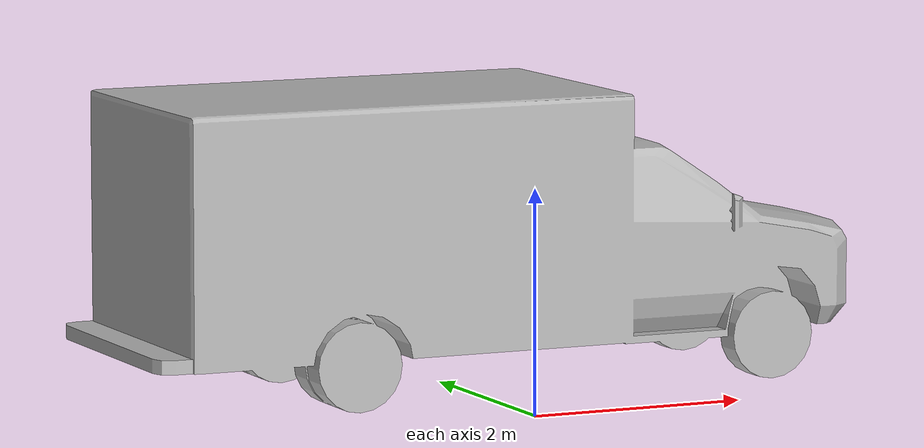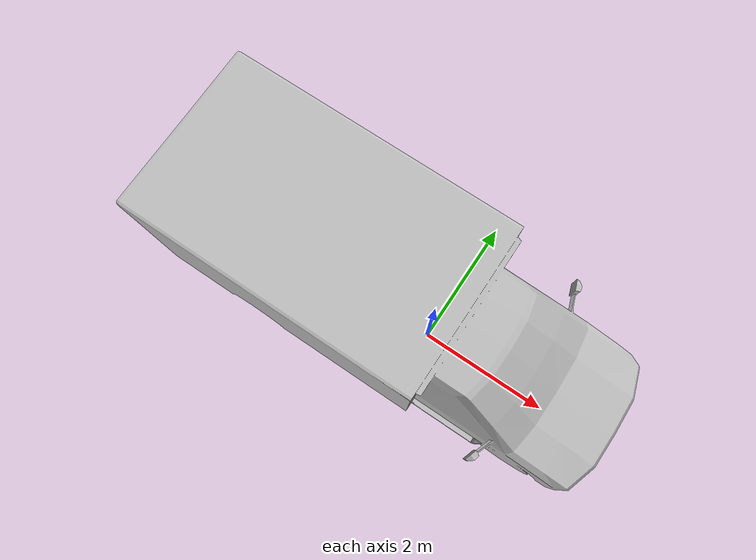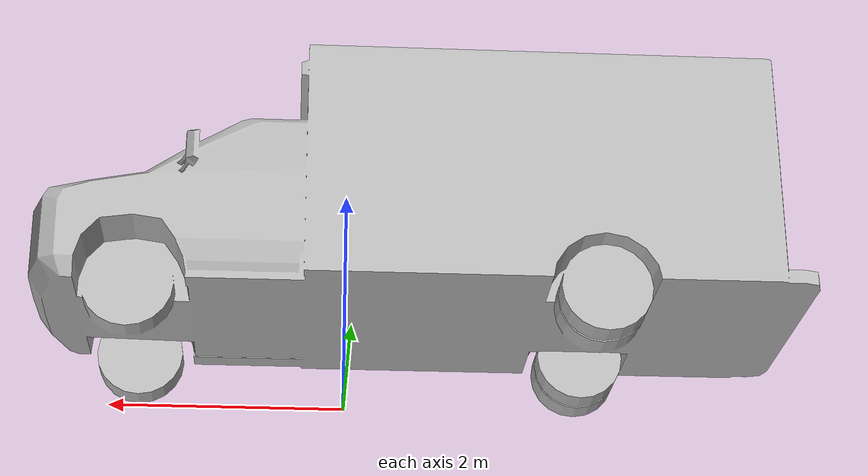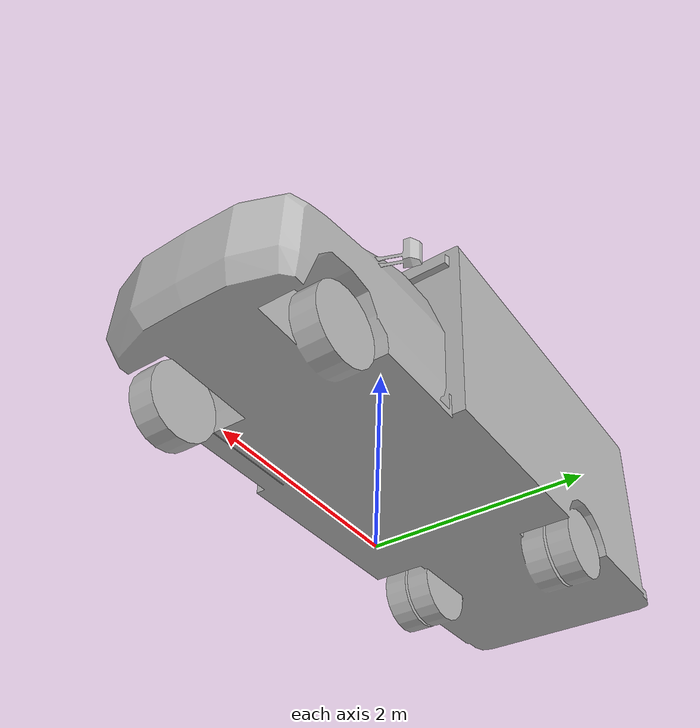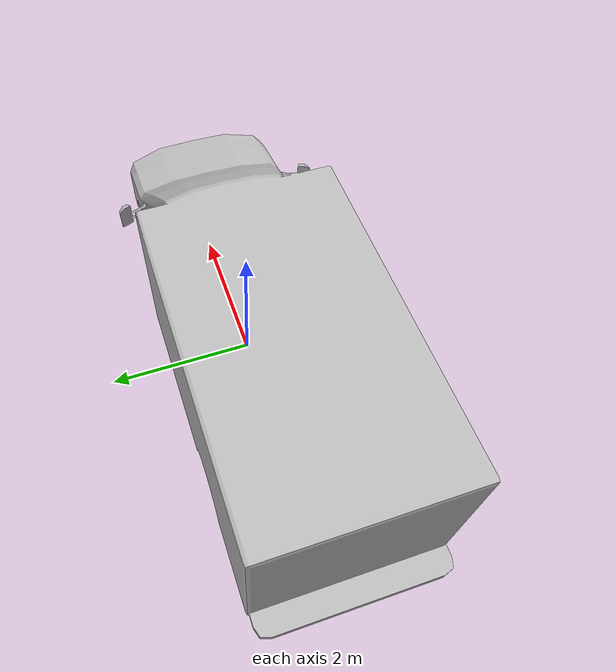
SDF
<?xml version="1.0" ?>
<sdf version="1.6">
  <model name="ambulance">

    <plugin name="slotcar" filename="libslotcar.so">

      <holonomic>0</holonomic>

      <!-- Forward / Backward -->
      <nominal_drive_speed>6.50</nominal_drive_speed>
      <nominal_drive_acceleration>2.50</nominal_drive_acceleration>
      <max_drive_acceleration>2.56</max_drive_acceleration>

      <!-- Turning -->
      <nominal_turn_speed>0.785</nominal_turn_speed>
      <nominal_turn_acceleration>2</nominal_turn_acceleration>
      <max_turn_acceleration>2</max_turn_acceleration>

      <turning_right_angle_mul_offset>0.35</turning_right_angle_mul_offset>

      <tire_radius>0.2</tire_radius>
      <base_width>1.3206</base_width>

      <!-- Stop distance and radius  -->
      <stop_distance>1.5</stop_distance>
      <stop_radius>1.5</stop_radius>

      <!-- Battery params -->
      <nominal_voltage>24.0</nominal_voltage>
      <nominal_capacity>20.0</nominal_capacity>
      <charging_current>10.0</charging_current>

      <!-- Physical params -->
      <mass>7.0</mass>
      <inertia>5.0</inertia>
      <friction_coefficient>0.0</friction_coefficient>

      <!-- Power systems -->
      <nominal_power>100.0</nominal_power>

    </plugin>

    <static>false</static>
    <link name="body">
      <pose>0 0 0.875 0 0 1.57</pose>

      <inertial>
        <pose frame=''>0 1.0 0 0 -0 0</pose>
        <mass>7</mass> <!-- A higher mass causes wheels to spin while attempting to turn when using DART -->
        <inertia>
          <ixx>0.5</ixx>
          <ixy>0</ixy>
          <ixz>0</ixz>
          <iyy>0.5</iyy>
          <iyz>0</iyz>
          <izz>0.5</izz>
        </inertia>
      </inertial>

      <collision name="collision">
        <pose frame=''>0 0.375 0 0 -0 0</pose>
        <geometry>
          <box>
            <size>0.65 1.5 1.0</size>
          </box>
        </geometry>
      </collision>
      <visual name="visual">
        <pose frame=''>0 0.7 -0.5 0 -0 0</pose>
        <geometry>
          <mesh>
            <scale>0.0225 0.0225 0.0225</scale>
            <uri>model://Ambulance/meshes/ambulance.obj</uri>
          </mesh>
        </geometry>
      </visual>

    </link>
  </model>
</sdf>
